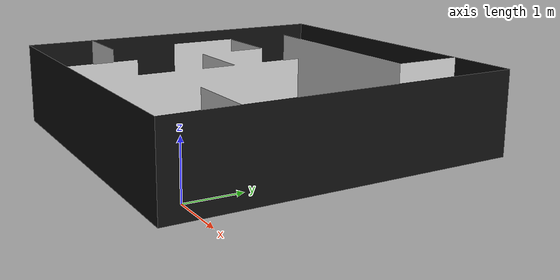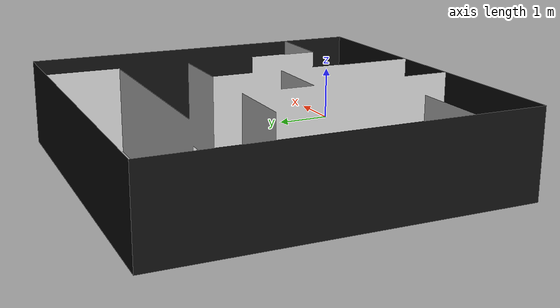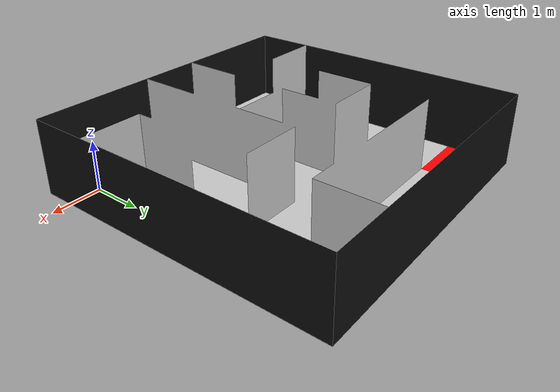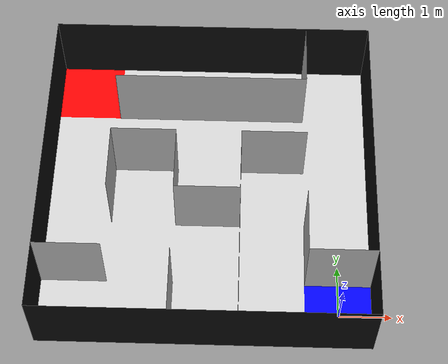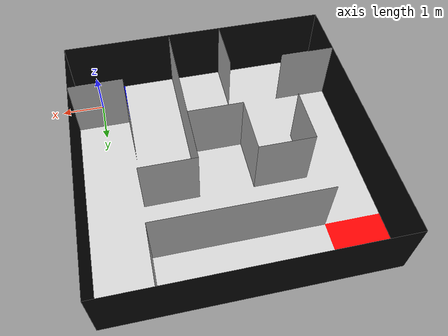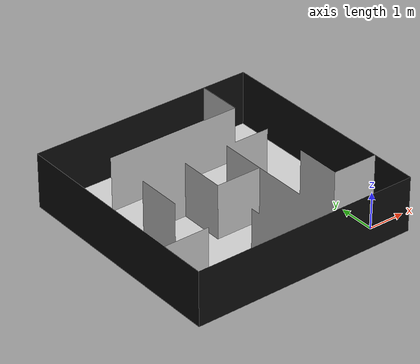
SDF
<sdf version='1.5'>
  <!-- Draw Model -->
  <model name="mazev2">
    <static>true</static>
    <link name="mazev2">
      <collision name="collision">
        <geometry>
          <mesh>
            <uri>model://turtlebot3_maze2/mazev2/mazev2.stl</uri>
          </mesh>
        </geometry>
      </collision>

      <visual name="visual">
        <geometry>
          <mesh>
            <uri>model://turtlebot3_maze2/mazev2/mazev2.dae</uri>
          </mesh>
        </geometry>
      </visual>
    </link>
  </model>
</sdf>
